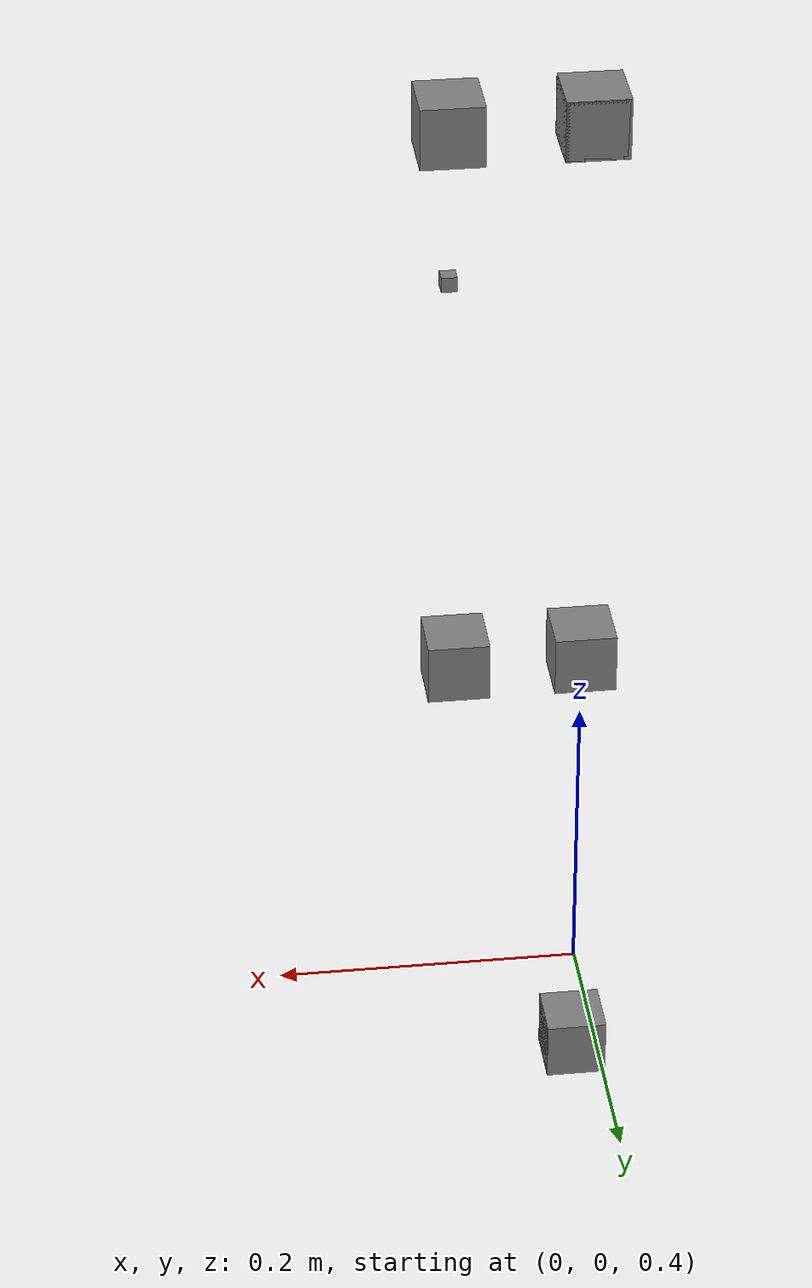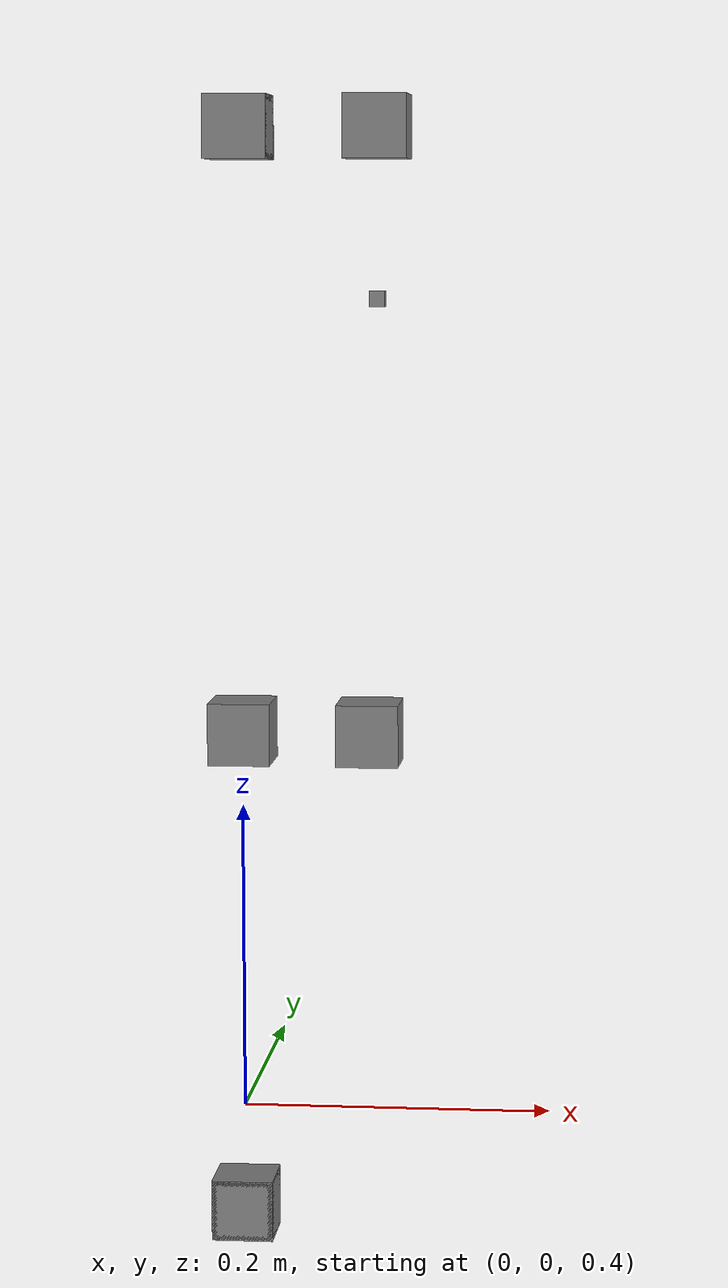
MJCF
<?xml version="1.0"?>
<mujoco model="panda">
    <compiler angle="radian" inertiafromgeom="false"/>
    <option timestep="0.01" gravity="0 0 -9.81" integrator="RK4"/>

    <worldbody>
        <body name="panda_link0" pos="0 0 0">
            <geom type="box" size="0.001 0.001 0.001" rgba="0 0 0 0"/>

            <!-- panda_link1 / panda_joint1 -->
            <body name="panda_link1" pos="0 0 0.333">
                <inertial pos="0.003875 0.002081 -0.1750"
                          fullinertia="0.70337 0.70661 0.009117 -0.000139 0.006772 0.019169"
                          mass="4.970684"/>
                <geom type="box" size="0.02 0.02 0.02"/>
                <joint name="panda_joint1" type="hinge" axis="0 0 1"
                       range="-2.8973 2.8973" damping="0" frictionloss="0"/>

                <!-- panda_link2 / panda_joint2 -->
                <body name="panda_link2" pos="0 0 0" quat="0.70710678 -0.70710678 0 0">
                    <inertial pos="-0.003141 -0.02872 0.003495"
                              fullinertia="0.007962 0.02811 0.025995 -0.003925 0.010254 0.000704"
                              mass="0.646926"/>
                    <geom type="box" size="0.02 0.02 0.02"/>
                    <joint name="panda_joint2" type="hinge" axis="0 0 1"
                           range="-1.7628 1.7628" damping="0" frictionloss="0"/>

                    <!-- panda_link3 / panda_joint3 -->
                    <body name="panda_link3" pos="0 -0.316 0" quat="0.70710678 0.70710678 0 0">
                        <inertial pos="0.027518 0.039252 -0.066502"
                                  fullinertia="0.037242 0.036155 0.01083 -0.004761 -0.011396 -0.012805"
                                  mass="3.228604"/>
                        <geom type="box" size="0.02 0.02 0.02"/>
                        <joint name="panda_joint3" type="hinge" axis="0 0 1"
                               range="-2.8973 2.8973" damping="0" frictionloss="0"/>

                        <!-- panda_link4 / panda_joint4 -->
                        <body name="panda_link4" pos="0.0825 0 0" quat="0.70710678 0.70710678 0 0">
                            <inertial pos="-0.05317 0.104419 0.027454"
                                      fullinertia="0.025853 0.019552 0.028323 0.007796 -0.001332 0.008641"
                                      mass="3.587895"/>
                            <geom type="box" size="0.02 0.02 0.02"/>
                            <joint name="panda_joint4" type="hinge" axis="0 0 1"
                                   range="-3.0718 2.0698" damping="0" frictionloss="0"/>

                            <!-- panda_link5 / panda_joint5 -->
                            <body name="panda_link5" pos="-0.0825 0.384 0" quat="0.70710678 -0.70710678 0 0">
                                <inertial pos="-0.011953 0.041065 -0.038437"
                                          fullinertia="0.035549 0.029474 0.008627 -0.002117 -0.004037 0.000229"
                                          mass="1.225946"/>
                                <geom type="box" size="0.02 0.02 0.02"/>
                                <joint name="panda_joint5" type="hinge" axis="0 0 1"
                                       range="-2.8973 2.8973" damping="0" frictionloss="0"/>

                                <!-- panda_link6 / panda_joint6 -->
                                <body name="panda_link6" pos="0 0 0" quat="0.70710678 0.70710678 0 0">
                                    <inertial pos="0.060149 -0.014117 -0.010517"
                                              fullinertia="0.001964 0.004354 0.005433 0.000109 -0.001158 0.000341"
                                              mass="1.666555"/>
                                    <geom type="box" size="0.02 0.02 0.02"/>
                                    <joint name="panda_joint6" type="hinge" axis="0 0 1"
                                           range="-0.0175 3.7525" damping="0" frictionloss="0"/>

                                    <!-- panda_link7 / panda_joint7 -->
                                    <body name="panda_link7" pos="0.088 0 0" quat="0.70710678 0.70710678 0 0">
                                        <inertial pos="0.010517 -0.004252 0.061597"
                                                  fullinertia="0.012516 0.010027 0.004815 -0.000428 -0.001196 -0.000741"
                                                  mass="0.735522"/>
                                        <geom type="box" size="0.02 0.02 0.02"/>
                                        <joint name="panda_joint7" type="hinge" axis="0 0 1"
                                               range="-2.8973 2.8973" damping="0" frictionloss="0"/>

                                        <!-- panda_link8：固定在 link7 上，无 joint -->
                                        <body name="panda_link8" pos="0 0 0.107">
                                            <inertial pos="0 0 0"
                                                      fullinertia="0.001 0.001 0.001 0 0 0"
                                                      mass="0"/>
                                            <geom type="box" size="0.005 0.005 0.005"/>
                                        </body>
                                    </body>
                                </body>
                            </body>
                        </body>
                    </body>
                </body>
            </body>
        </body>
    </worldbody>

    <actuator>
        <general joint="panda_joint1" gear="1" biasprm="0 0 0"/>
        <general joint="panda_joint2" gear="1" biasprm="0 0 0"/>
        <general joint="panda_joint3" gear="1" biasprm="0 0 0"/>
        <general joint="panda_joint4" gear="1" biasprm="0 0 0"/>
        <general joint="panda_joint5" gear="1" biasprm="0 0 0"/>
        <general joint="panda_joint6" gear="1" biasprm="0 0 0"/>
        <general joint="panda_joint7" gear="1" biasprm="0 0 0"/>
    </actuator>
</mujoco>
